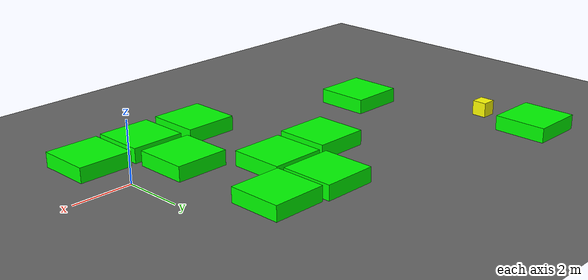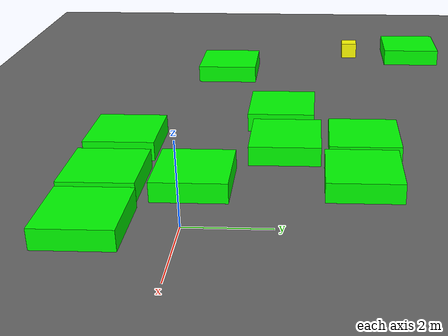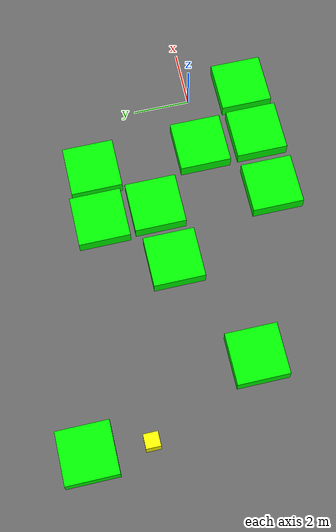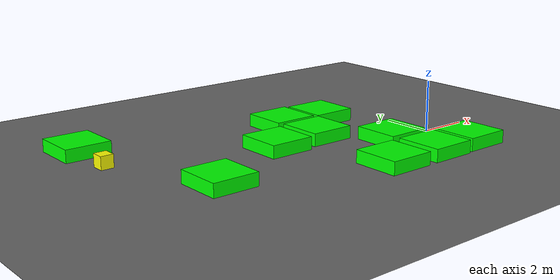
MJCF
<mujoco model="lvl4_standard_obs10_d2mid_seed36">
    <compiler angle="degree" coordinate="local" inertiafromgeom="true"/>
    <option integrator="RK4" timestep="0.01"/>

    <asset>
        <texture builtin="gradient" height="100" rgb1="0.6 0.8 1" rgb2="0 0 0" type="skybox" width="100"/>
        <texture name="floor_texture" type="2d" builtin="checker" width="100" height="100" rgb1="0 0 0" rgb2="0.8 0.8 0.8"/>
        <material name="MatPlane" reflectance="0.5" shininess="1" specular="1" texrepeat="10 10" texture="floor_texture"/>
    </asset>

    <!-- Excluding the contact between the agent and the goal, and the agent and the floor -->
    <contact>
        <exclude body1="agent" body2="goal"/>
        <exclude body1 = "agent" body2 = "floor"/>
    </contact>

    <extension>
        <plugin plugin = "mujoco.pid">
            <instance name = "pid1">
                <config key="kp" value="2"/>
                <config key="ki" value="0"/>
                <config key="kd" value="55"/>
            </instance>
        </plugin>
    </extension>

    <worldbody>
        <light cutoff="100" diffuse="1 1 1" dir="-0 0 -1.3" directional="true" exponent="1" pos="0 0 1.3" specular=".1 .1 .1"/>
        <body name="floor" pos="0 0 0">
            <geom name="floor_geom" type="plane" size="20 20 0.1" material="MatPlane"/>
        </body>

                <body name="goal" pos="0.0000 0.0000 0">
            <geom name="goal_geom" type="plane" size="0.5 0.5 1" pos="0 0 0" rgba="1 0 0 1"/>
        </body>

                <body name="agent" pos="-12.0000 4.0000 0.250">
            <joint name="j1" type="slide" axis ="1 0 0 "/>
            <joint name="j2" type="slide" axis ="0 1 0 "/>
            <geom name="agent_geom" type="box" size="0.25 0.25 0.250" rgba="1 1 0 1"/>
        </body>

        <body name="obstacle1" pos="-11.9283 6.0899 0.250">  <geom name="obstacle1_geom" type="box" size="0.9000 0.9000 0.250" rgba="0 1 0 1"/></body>
        <body name="obstacle2" pos="-3.9957 4.0852 0.250">  <geom name="obstacle2_geom" type="box" size="0.9000 0.9000 0.250" rgba="0 1 0 1"/></body>
        <body name="obstacle3" pos="-2.0614 3.9702 0.250">  <geom name="obstacle3_geom" type="box" size="0.9000 0.9000 0.250" rgba="0 1 0 1"/></body>
        <body name="obstacle4" pos="-6.0311 1.9066 0.250">  <geom name="obstacle4_geom" type="box" size="0.9000 0.9000 0.250" rgba="0 1 0 1"/></body>
        <body name="obstacle5" pos="-3.9070 2.0912 0.250">  <geom name="obstacle5_geom" type="box" size="0.9000 0.9000 0.250" rgba="0 1 0 1"/></body>
        <body name="obstacle6" pos="-9.9890 0.0042 0.250">  <geom name="obstacle6_geom" type="box" size="0.9000 0.9000 0.250" rgba="0 1 0 1"/></body>
        <body name="obstacle7" pos="-1.9467 0.0184 0.250">  <geom name="obstacle7_geom" type="box" size="0.9000 0.9000 0.250" rgba="0 1 0 1"/></body>
        <body name="obstacle8" pos="-4.0872 -2.0664 0.250">  <geom name="obstacle8_geom" type="box" size="0.9000 0.9000 0.250" rgba="0 1 0 1"/></body>
        <body name="obstacle9" pos="-1.9059 -2.0548 0.250">  <geom name="obstacle9_geom" type="box" size="0.9000 0.9000 0.250" rgba="0 1 0 1"/></body>
        <body name="obstacle10" pos="0.0902 -1.9890 0.250">  <geom name="obstacle10_geom" type="box" size="0.9000 0.9000 0.250" rgba="0 1 0 1"/></body>

    </worldbody>

    <sensor>
<!-- SENSORS -->

        <distance name="dist1" geom1="agent_geom" geom2="obstacle1_geom" cutoff="1.5"/>
        <distance name="dist2" geom1="agent_geom" geom2="obstacle2_geom" cutoff="1.5"/>
        <distance name="dist3" geom1="agent_geom" geom2="obstacle3_geom" cutoff="1.5"/>
        <distance name="dist4" geom1="agent_geom" geom2="obstacle4_geom" cutoff="1.5"/>
        <distance name="dist5" geom1="agent_geom" geom2="obstacle5_geom" cutoff="1.5"/>
        <distance name="dist6" geom1="agent_geom" geom2="obstacle6_geom" cutoff="1.5"/>
        <distance name="dist7" geom1="agent_geom" geom2="obstacle7_geom" cutoff="1.5"/>
        <distance name="dist8" geom1="agent_geom" geom2="obstacle8_geom" cutoff="1.5"/>
        <distance name="dist9" geom1="agent_geom" geom2="obstacle9_geom" cutoff="1.5"/>
        <distance name="dist10" geom1="agent_geom" geom2="obstacle10_geom" cutoff="1.5"/>
</sensor>

    <actuator>
        <plugin joint="j1" plugin="mujoco.pid" instance="pid1" />
        <plugin joint="j2" plugin="mujoco.pid" instance="pid1"/>
    </actuator>
</mujoco>
